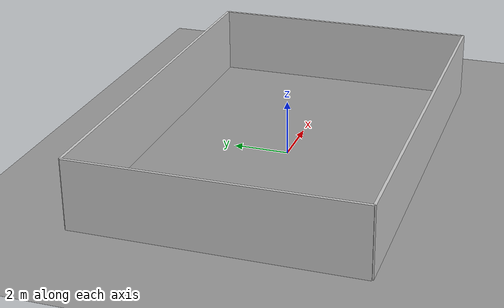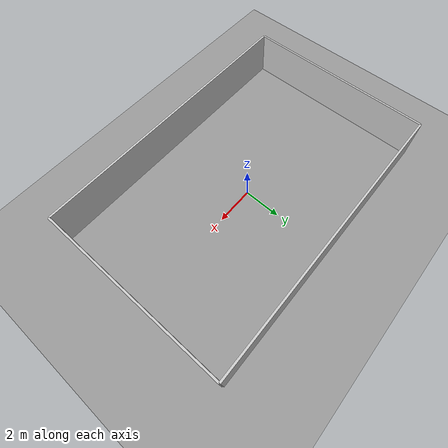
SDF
<sdf version="1.11">
 <world name="empty_station">
  <physics name="1ms" type="dart">
   <max_step_size>0.001</max_step_size>
   <real_time_factor>1.0</real_time_factor>
  </physics>
  <plugin filename="gz-sim-physics-system" name="gz::sim::systems::Physics"/>
  <plugin filename="gz-sim-user-commands-system" name="gz::sim::systems::UserCommands"/>
  <plugin filename="gz-sim-scene-broadcaster-system" name="gz::sim::systems::SceneBroadcaster"/>
  <plugin filename="gz-sim-sensors-system" name="gz::sim::systems::Sensors">
   <render_engine>ogre2</render_engine>
  </plugin>
  <plugin filename="gz-sim-imu-system" name="gz::sim::systems::Imu"/>
  <plugin filename="gz-sim-contact-system" name="gz::sim::systems::Contact"/>
  <light type="directional" name="sun">
   <pose>0 0 10 0 0 0</pose>
   <diffuse>0.8 0.8 0.8 1</diffuse>
   <specular>0.2 0.2 0.2 1</specular>
   <direction>-0.5 0.1 -0.9</direction>
  </light>
  <model name="ground_plane">
   <static>true</static>
   <link name="link">
    <collision name="collision">
     <geometry><plane><normal>0 0 1</normal><size>30 30</size></plane></geometry>
    </collision>
    <visual name="visual">
     <geometry><plane><normal>0 0 1</normal><size>30 30</size></plane></geometry>
     <material>
      <ambient>0.5 0.5 0.5 1</ambient>
      <diffuse>0.6 0.6 0.6 1</diffuse>
      <specular>0.2 0.2 0.2 1</specular>
     </material>
    </visual>
   </link>
  </model>
  <model name="wall_north">
   <static>true</static>
   <pose>0 5 1.25 0 0 0</pose>
   <link name="link">
    <collision name="collision"><geometry><box><size>15 0.1 2.5</size></box></geometry></collision>
    <visual name="visual">
     <geometry><box><size>15 0.1 2.5</size></box></geometry>
     <material><ambient>0.8 0.8 0.8 1</ambient><diffuse>0.8 0.8 0.8 1</diffuse></material>
    </visual>
   </link>
  </model>
  <model name="wall_south">
   <static>true</static>
   <pose>0 -5 1.25 0 0 0</pose>
   <link name="link">
    <collision name="collision"><geometry><box><size>15 0.1 2.5</size></box></geometry></collision>
    <visual name="visual">
     <geometry><box><size>15 0.1 2.5</size></box></geometry>
     <material><ambient>0.8 0.8 0.8 1</ambient><diffuse>0.8 0.8 0.8 1</diffuse></material>
    </visual>
   </link>
  </model>
  <model name="wall_east">
   <static>true</static>
   <pose>7.5 0 1.25 0 0 0</pose>
   <link name="link">
    <collision name="collision"><geometry><box><size>0.1 10 2.5</size></box></geometry></collision>
    <visual name="visual">
     <geometry><box><size>0.1 10 2.5</size></box></geometry>
     <material><ambient>0.8 0.8 0.8 1</ambient><diffuse>0.8 0.8 0.8 1</diffuse></material>
    </visual>
   </link>
  </model>
  <model name="wall_west">
   <static>true</static>
   <pose>-7.5 0 1.25 0 0 0</pose>
   <link name="link">
    <collision name="collision"><geometry><box><size>0.1 10 2.5</size></box></geometry></collision>
    <visual name="visual">
     <geometry><box><size>0.1 10 2.5</size></box></geometry>
     <material><ambient>0.8 0.8 0.8 1</ambient><diffuse>0.8 0.8 0.8 1</diffuse></material>
    </visual>
   </link>
  </model>
 </world>
</sdf>
